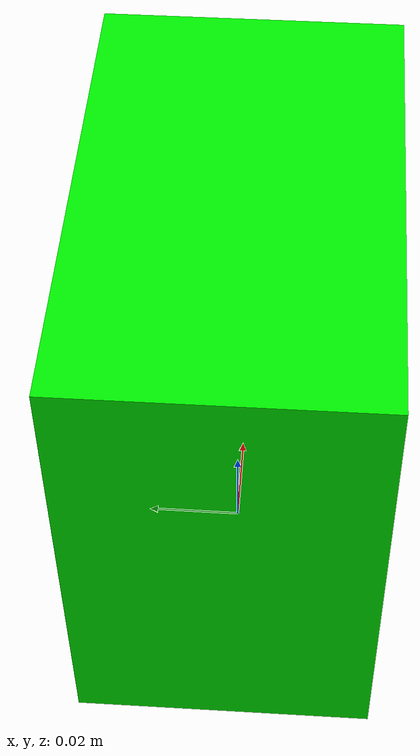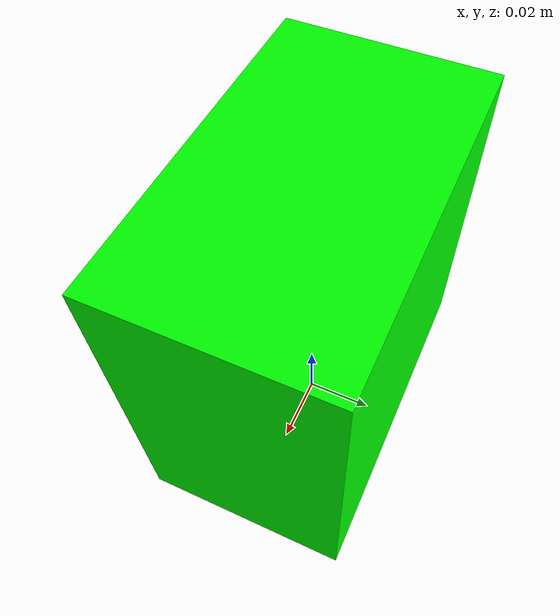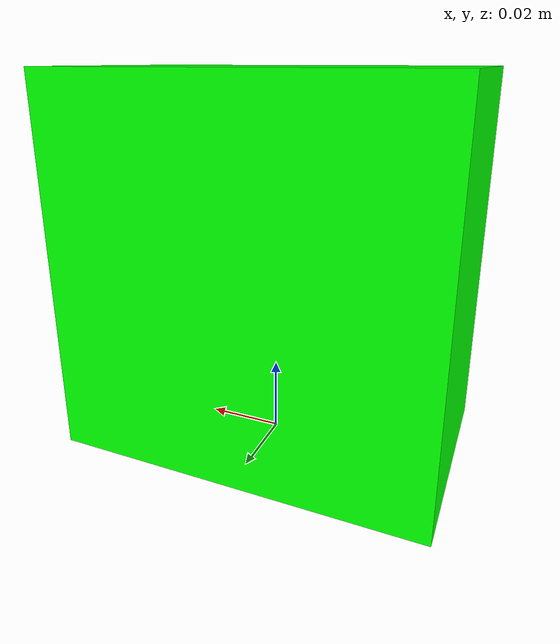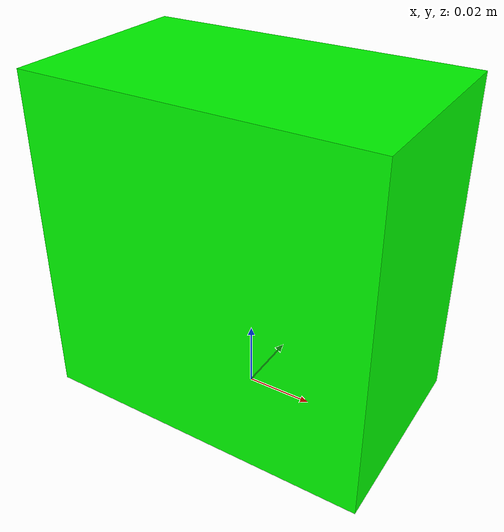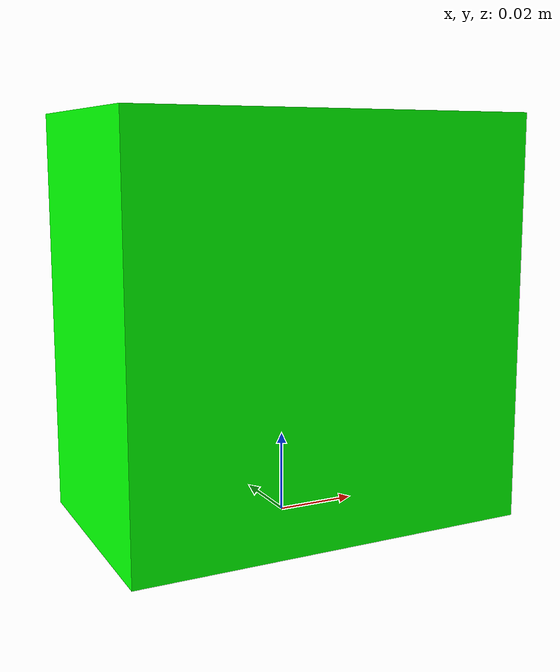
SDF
<?xml version="1.0"?>
<sdf version="1.6">
  <model name="test_box">
    <pose>0 0 0.05 0 0 0</pose>
    <static>true</static>
    <link name="link">
      <collision name="collision">
        <geometry>
          <box>
            <size>0.10 0.06 0.10</size>
          </box>
        </geometry>
      </collision>
      <visual name="visual">
        <geometry>
          <box>
            <size>0.10 0.06 0.10</size>
          </box>
        </geometry>
        <material>
          <ambient>0 1 0 1</ambient>
          <diffuse>0 1 0 1</diffuse>
          <specular>0.1 0.1 0.1 1</specular>
        </material>
      </visual>
    </link>
  </model>
</sdf>
